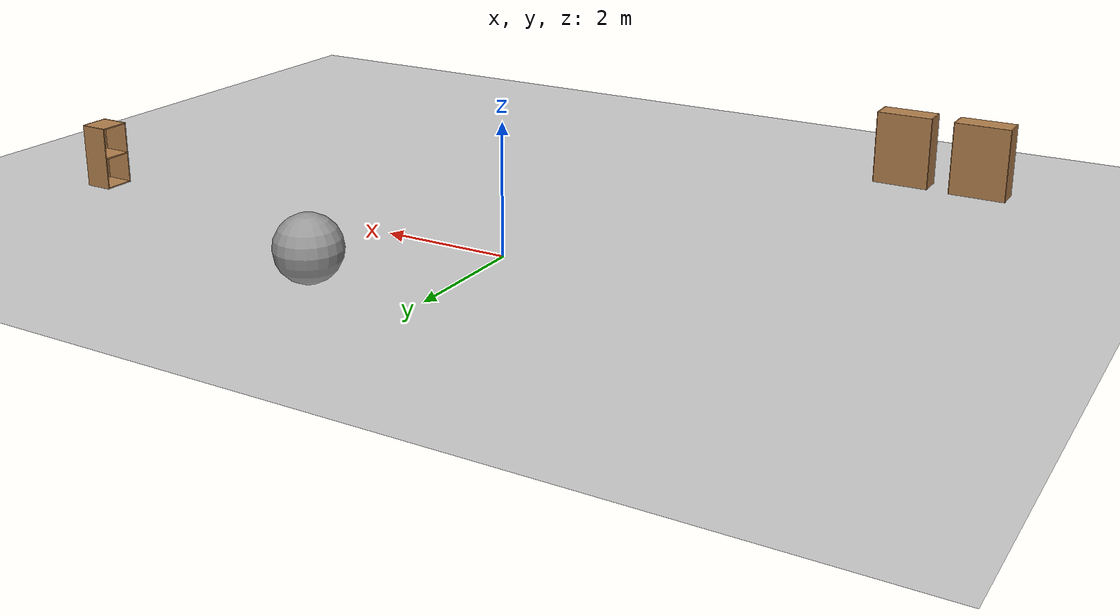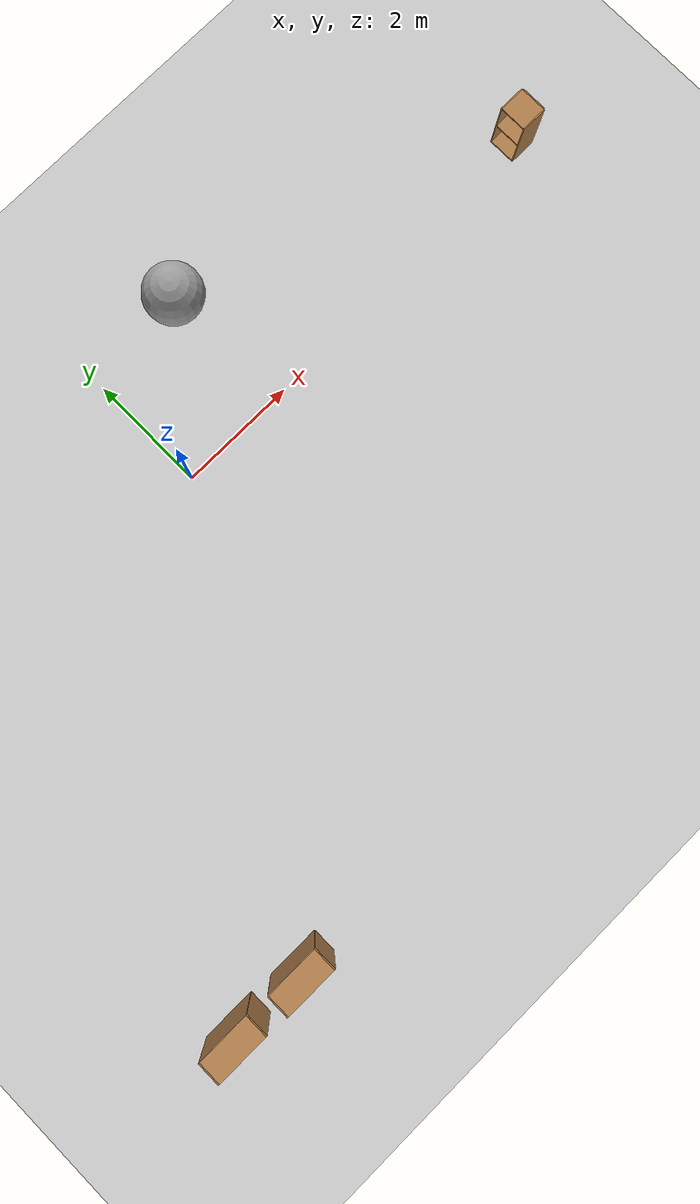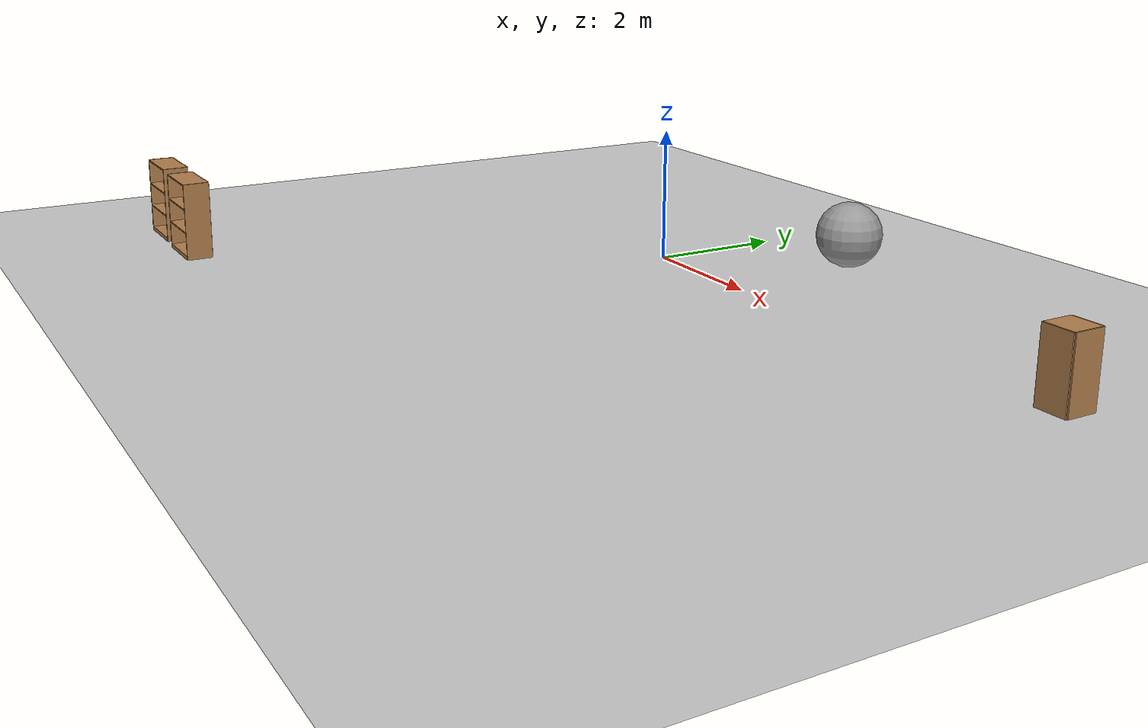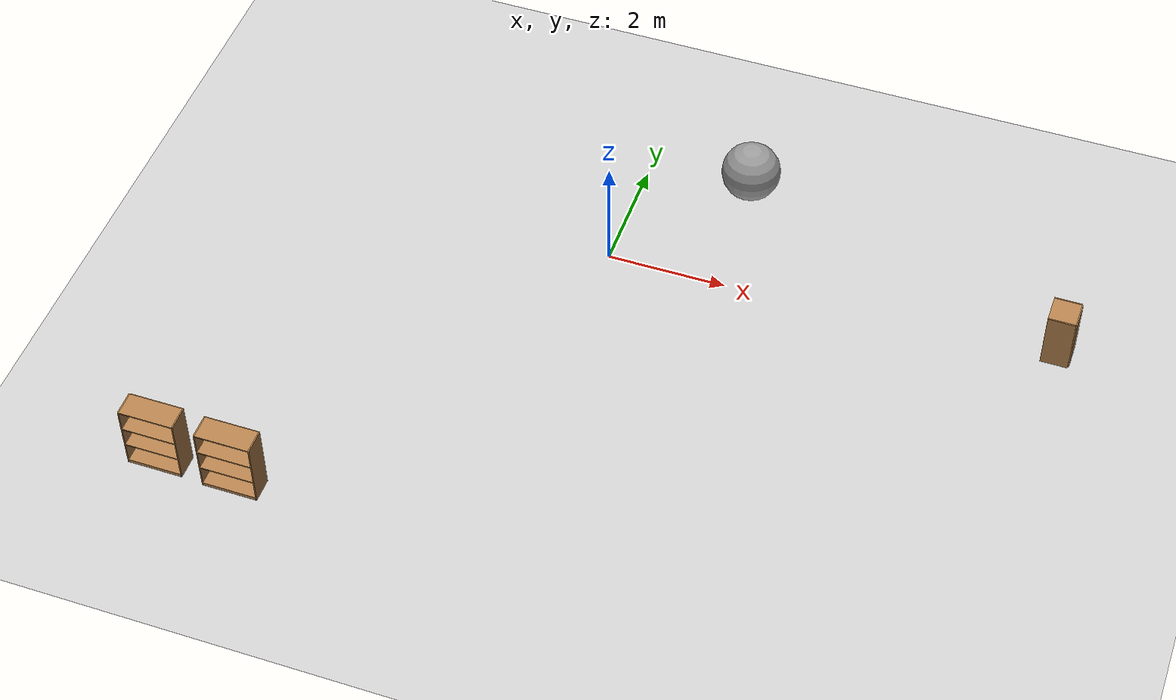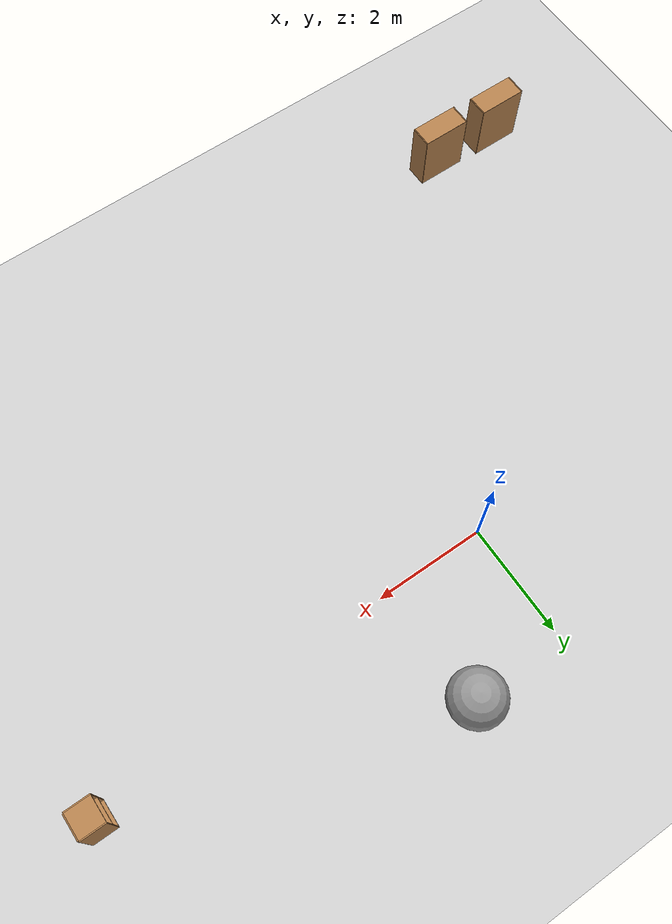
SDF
<sdf version="1.6">
 <world name="default">
  <light name="sun" type="directional">
   <pose>0 0 10 0 -0 0</pose>
   <diffuse>0.8 0.8 0.8 1</diffuse>
   <specular>0.1 0.1 0.1 1</specular>
   <attenuation>
    <range>1000</range>
    <constant>0.9</constant>
    <linear>0.01</linear>
    <quadratic>0.001</quadratic>
   </attenuation>
   <direction>-0.5 0.5 -1</direction>
  </light>
  <model name="ground_plane">
   <static>1</static>
   <link name="link">
    <collision name="collision">
     <geometry><plane><normal>0 0 1</normal><size>100 100</size></plane></geometry>
     <surface><friction><ode><mu>100</mu><mu2>50</mu2></ode></friction></surface>
    </collision>
    <visual name="visual">
     <cast_shadows>0</cast_shadows>
     <geometry><plane><normal>0 0 1</normal><size>100 100</size></plane></geometry>
     <material>
      <script><uri>file://media/materials/scripts/gazebo.material</uri><name>Gazebo/Grey</name></script>
     </material>
    </visual>
   </link>
  </model>
  <physics name="default_physics" default="0" type="ode">
   <max_step_size>0.01</max_step_size>
   <real_time_factor>1</real_time_factor>
   <real_time_update_rate>100</real_time_update_rate>
  </physics>
  <gravity>0 0 -9.8</gravity>
  <magnetic_field>6e-06 2.3e-05 -4.2e-05</magnetic_field>
  <atmosphere type="adiabatic"/>
  <scene><ambient>0.4 0.4 0.4 1</ambient><background>0.7 0.7 0.7 1</background><shadows>1</shadows></scene>
  <spherical_coordinates>
   <surface_model>EARTH_WGS84</surface_model>
   <latitude_deg>0</latitude_deg>
   <longitude_deg>0</longitude_deg>
   <elevation>0</elevation>
   <heading_deg>0</heading_deg>
  </spherical_coordinates>
  <model name="cabinet">
   <static>1</static>
   <link name="cabinet_bottom_plate">
    <inertial>
     <pose>0 0 -1 0 -0 0</pose>
     <inertia><ixx>2.05</ixx><ixy>0</ixy><ixz>0</ixz><iyy>2.05</iyy><iyz>0</iyz><izz>2.05</izz></inertia>
     <mass>25</mass>
    </inertial>
    <collision name="cabinet_bottom_plate_geom">
     <pose>0 0 0.01 0 -0 0</pose>
     <geometry><box><size>0.45 0.45 0.02</size></box></geometry>
    </collision>
    <visual name="cabinet_bottom_plate_geom_visual">
     <pose>0 0 0.01 0 -0 0</pose>
     <geometry><box><size>0.45 0.45 0.02</size></box></geometry>
     <material>
      <script><uri>file://media/materials/scripts/gazebo.material</uri><name>Gazebo/Wood</name></script>
     </material>
    </visual>
    <collision name="cabinet_bottom_plate_geom_cabinet_back_plate">
     <pose>0.235 0 0.51 0 -0 0</pose>
     <geometry><box><size>0.02 0.45 1.02</size></box></geometry>
    </collision>
    <visual name="cabinet_bottom_plate_geom_cabinet_back_plate_visual">
     <pose>0.235 0 0.51 0 -0 0</pose>
     <geometry><box><size>0.02 0.45 1.02</size></box></geometry>
     <material>
      <script><uri>file://media/materials/scripts/gazebo.material</uri><name>Gazebo/Wood</name></script>
     </material>
    </visual>
    <collision name="cabinet_bottom_plate_geom_cabinet_left_plate">
     <pose>0 0.235 0.51 0 -0 0</pose>
     <geometry><box><size>0.45 0.02 1.02</size></box></geometry>
    </collision>
    <visual name="cabinet_bottom_plate_geom_cabinet_left_plate_visual">
     <pose>0 0.235 0.51 0 -0 0</pose>
     <geometry><box><size>0.45 0.02 1.02</size></box></geometry>
     <material>
      <script><uri>file://media/materials/scripts/gazebo.material</uri><name>Gazebo/Wood</name></script>
     </material>
    </visual>
    <collision name="cabinet_bottom_plate_geom_cabinet_middle_plate">
     <pose>0 0 0.51 0 -0 0</pose>
     <geometry><box><size>0.45 0.45 0.02</size></box></geometry>
    </collision>
    <visual name="cabinet_bottom_plate_geom_cabinet_middle_plate_visual">
     <pose>0 0 0.51 0 -0 0</pose>
     <geometry><box><size>0.45 0.45 0.02</size></box></geometry>
     <material>
      <script><uri>file://media/materials/scripts/gazebo.material</uri><name>Gazebo/Wood</name></script>
     </material>
    </visual>
    <collision name="cabinet_bottom_plate_geom_cabinet_right_plate">
     <pose>0 -0.235 0.51 0 -0 0</pose>
     <geometry><box><size>0.45 0.02 1.02</size></box></geometry>
    </collision>
    <visual name="cabinet_bottom_plate_geom_cabinet_right_plate_visual">
     <pose>0 -0.235 0.51 0 -0 0</pose>
     <geometry><box><size>0.45 0.02 1.02</size></box></geometry>
     <material>
      <script><uri>file://media/materials/scripts/gazebo.material</uri><name>Gazebo/Wood</name></script>
     </material>
    </visual>
    <collision name="cabinet_bottom_plate_geom_cabinet_top_plate">
     <pose>0 0 1.01 0 -0 0</pose>
     <geometry><box><size>0.45 0.45 0.02</size></box></geometry>
    </collision>
    <visual name="cabinet_bottom_plate_geom_cabinet_top_plate_visual">
     <pose>0 0 1.01 0 -0 0</pose>
     <geometry><box><size>0.45 0.45 0.02</size></box></geometry>
     <material>
      <script><uri>file://media/materials/scripts/gazebo.material</uri><name>Gazebo/Wood</name></script>
     </material>
    </visual>
   </link>
   <pose>7.48449 0.360323 0 0 -0 0</pose>
  </model>
  <model name="bookshelf">
   <static>1</static>
   <link name="link">
    <inertial><mass>1</mass></inertial>
    <collision name="back">
     <pose>0 0.005 0.6 0 -0 0</pose>
     <geometry><box><size>0.9 0.01 1.2</size></box></geometry>
    </collision>
    <visual name="visual1">
     <pose>0 0.005 0.6 0 -0 0</pose>
     <geometry><box><size>0.9 0.01 1.2</size></box></geometry>
     <material>
      <script><uri>file://media/materials/scripts/gazebo.material</uri><name>Gazebo/Wood</name></script>
     </material>
    </visual>
    <collision name="left_side">
     <pose>0.45 -0.195 0.6 0 -0 0</pose>
     <geometry><box><size>0.02 0.4 1.2</size></box></geometry>
    </collision>
    <visual name="visual2">
     <pose>0.45 -0.195 0.6 0 -0 0</pose>
     <geometry><box><size>0.02 0.4 1.2</size></box></geometry>
     <material>
      <script><uri>file://media/materials/scripts/gazebo.material</uri><name>Gazebo/Wood</name></script>
     </material>
    </visual>
    <collision name="right_side">
     <pose>-0.45 -0.195 0.6 0 -0 0</pose>
     <geometry><box><size>0.02 0.4 1.2</size></box></geometry>
    </collision>
    <visual name="visual3">
     <pose>-0.45 -0.195 0.6 0 -0 0</pose>
     <geometry><box><size>0.02 0.4 1.2</size></box></geometry>
     <material>
      <script><uri>file://media/materials/scripts/gazebo.material</uri><name>Gazebo/Wood</name></script>
     </material>
    </visual>
    <collision name="bottom">
     <pose>0 -0.195 0.03 0 -0 0</pose>
     <geometry><box><size>0.88 0.4 0.06</size></box></geometry>
    </collision>
    <visual name="visual4">
     <pose>0 -0.195 0.03 0 -0 0</pose>
     <geometry><box><size>0.88 0.4 0.06</size></box></geometry>
     <material>
      <script><uri>file://media/materials/scripts/gazebo.material</uri><name>Gazebo/Wood</name></script>
     </material>
    </visual>
    <collision name="top">
     <pose>0 -0.195 1.19 0 -0 0</pose>
     <geometry><box><size>0.88 0.4 0.02</size></box></geometry>
    </collision>
    <visual name="visual5">
     <pose>0 -0.195 1.19 0 -0 0</pose>
     <geometry><box><size>0.88 0.4 0.02</size></box></geometry>
     <material>
      <script><uri>file://media/materials/scripts/gazebo.material</uri><name>Gazebo/Wood</name></script>
     </material>
    </visual>
    <collision name="low_shelf">
     <pose>0 -0.195 0.43 0 -0 0</pose>
     <geometry><box><size>0.88 0.4 0.02</size></box></geometry>
    </collision>
    <visual name="visual6">
     <pose>0 -0.195 0.43 0 -0 0</pose>
     <geometry><box><size>0.88 0.4 0.02</size></box></geometry>
     <material>
      <script><uri>file://media/materials/scripts/gazebo.material</uri><name>Gazebo/Wood</name></script>
     </material>
    </visual>
    <collision name="high_shelf">
     <pose>0 -0.195 0.8 0 -0 0</pose>
     <geometry><box><size>0.88 0.4 0.02</size></box></geometry>
    </collision>
    <visual name="visual7">
     <pose>0 -0.195 0.8 0 -0 0</pose>
     <geometry><box><size>0.88 0.4 0.02</size></box></geometry>
     <material>
      <script><uri>file://media/materials/scripts/gazebo.material</uri><name>Gazebo/Wood</name></script>
     </material>
    </visual>
   </link>
   <pose>-5.15149 -6.13885 0 0 -0 0</pose>
  </model>
  <model name="bookshelf_0">
   <static>1</static>
   <link name="link">
    <inertial><mass>1</mass></inertial>
    <collision name="back">
     <pose>0 0.005 0.6 0 -0 0</pose>
     <geometry><box><size>0.9 0.01 1.2</size></box></geometry>
    </collision>
    <visual name="visual1">
     <pose>0 0.005 0.6 0 -0 0</pose>
     <geometry><box><size>0.9 0.01 1.2</size></box></geometry>
     <material>
      <script><uri>file://media/materials/scripts/gazebo.material</uri><name>Gazebo/Wood</name></script>
     </material>
    </visual>
    <collision name="left_side">
     <pose>0.45 -0.195 0.6 0 -0 0</pose>
     <geometry><box><size>0.02 0.4 1.2</size></box></geometry>
    </collision>
    <visual name="visual2">
     <pose>0.45 -0.195 0.6 0 -0 0</pose>
     <geometry><box><size>0.02 0.4 1.2</size></box></geometry>
     <material>
      <script><uri>file://media/materials/scripts/gazebo.material</uri><name>Gazebo/Wood</name></script>
     </material>
    </visual>
    <collision name="right_side">
     <pose>-0.45 -0.195 0.6 0 -0 0</pose>
     <geometry><box><size>0.02 0.4 1.2</size></box></geometry>
    </collision>
    <visual name="visual3">
     <pose>-0.45 -0.195 0.6 0 -0 0</pose>
     <geometry><box><size>0.02 0.4 1.2</size></box></geometry>
     <material>
      <script><uri>file://media/materials/scripts/gazebo.material</uri><name>Gazebo/Wood</name></script>
     </material>
    </visual>
    <collision name="bottom">
     <pose>0 -0.195 0.03 0 -0 0</pose>
     <geometry><box><size>0.88 0.4 0.06</size></box></geometry>
    </collision>
    <visual name="visual4">
     <pose>0 -0.195 0.03 0 -0 0</pose>
     <geometry><box><size>0.88 0.4 0.06</size></box></geometry>
     <material>
      <script><uri>file://media/materials/scripts/gazebo.material</uri><name>Gazebo/Wood</name></script>
     </material>
    </visual>
    <collision name="top">
     <pose>0 -0.195 1.19 0 -0 0</pose>
     <geometry><box><size>0.88 0.4 0.02</size></box></geometry>
    </collision>
    <visual name="visual5">
     <pose>0 -0.195 1.19 0 -0 0</pose>
     <geometry><box><size>0.88 0.4 0.02</size></box></geometry>
     <material>
      <script><uri>file://media/materials/scripts/gazebo.material</uri><name>Gazebo/Wood</name></script>
     </material>
    </visual>
    <collision name="low_shelf">
     <pose>0 -0.195 0.43 0 -0 0</pose>
     <geometry><box><size>0.88 0.4 0.02</size></box></geometry>
    </collision>
    <visual name="visual6">
     <pose>0 -0.195 0.43 0 -0 0</pose>
     <geometry><box><size>0.88 0.4 0.02</size></box></geometry>
     <material>
      <script><uri>file://media/materials/scripts/gazebo.material</uri><name>Gazebo/Wood</name></script>
     </material>
    </visual>
    <collision name="high_shelf">
     <pose>0 -0.195 0.8 0 -0 0</pose>
     <geometry><box><size>0.88 0.4 0.02</size></box></geometry>
    </collision>
    <visual name="visual7">
     <pose>0 -0.195 0.8 0 -0 0</pose>
     <geometry><box><size>0.88 0.4 0.02</size></box></geometry>
     <material>
      <script><uri>file://media/materials/scripts/gazebo.material</uri><name>Gazebo/Wood</name></script>
     </material>
    </visual>
   </link>
   <pose>-3.87528 -6.17188 0 0 -0 0</pose>
  </model>
  <model name="unit_sphere_0">
   <pose>1.76805 2.18285 0.5 0 -0 0</pose>
   <link name="link">
    <inertial>
     <mass>1</mass>
     <inertia><ixx>0.1</ixx><ixy>0</ixy><ixz>0</ixz><iyy>0.1</iyy><iyz>0</iyz><izz>0.1</izz></inertia>
    </inertial>
    <collision name="collision"><geometry><sphere><radius>0.5</radius></sphere></geometry></collision>
    <visual name="visual">
     <geometry><sphere><radius>0.5</radius></sphere></geometry>
     <material>
      <script><name>Gazebo/Grey</name><uri>file://media/materials/scripts/gazebo.material</uri></script>
     </material>
    </visual>
   </link>
  </model>
 </world>
</sdf>
